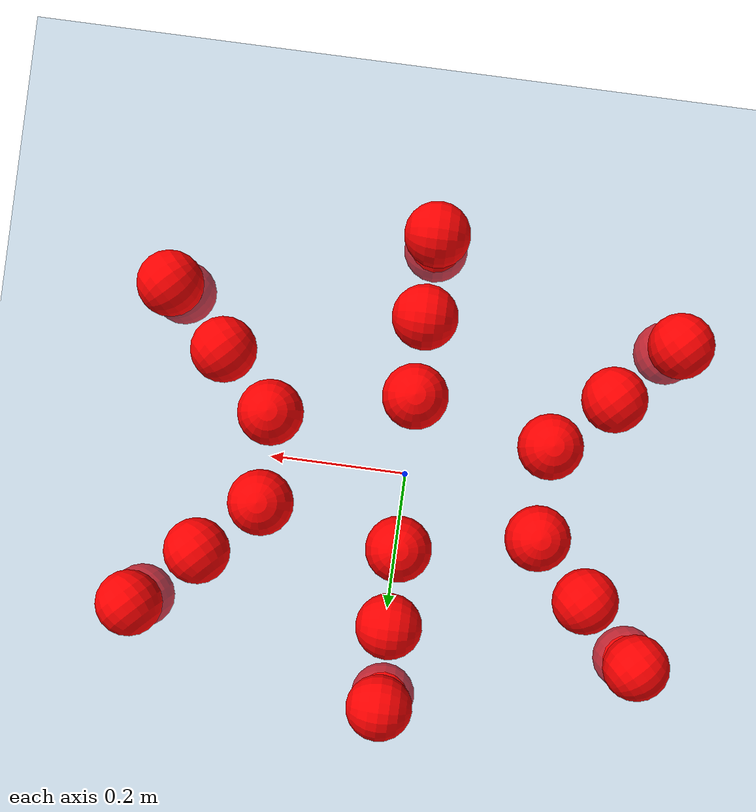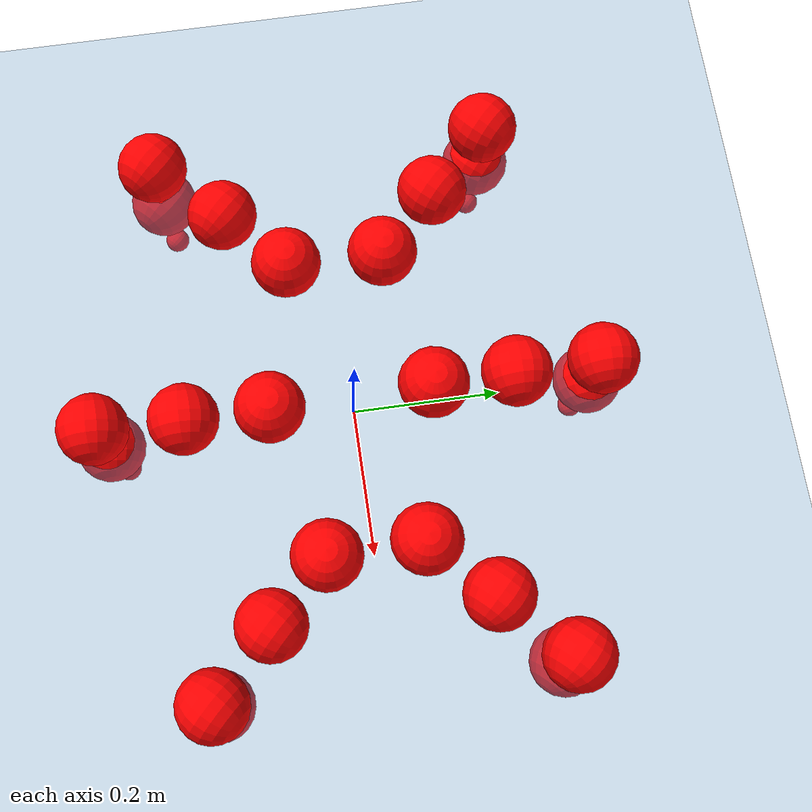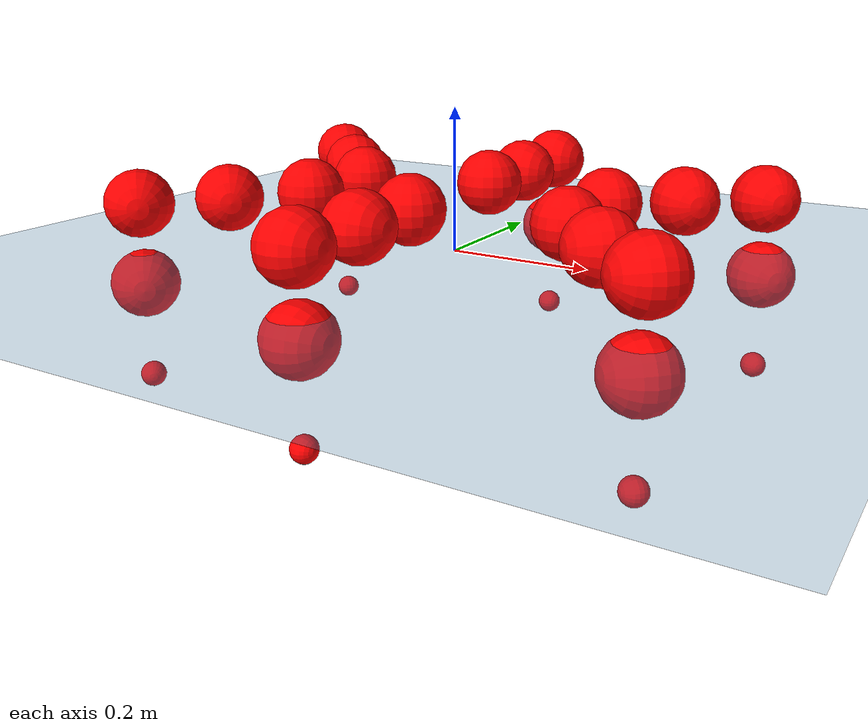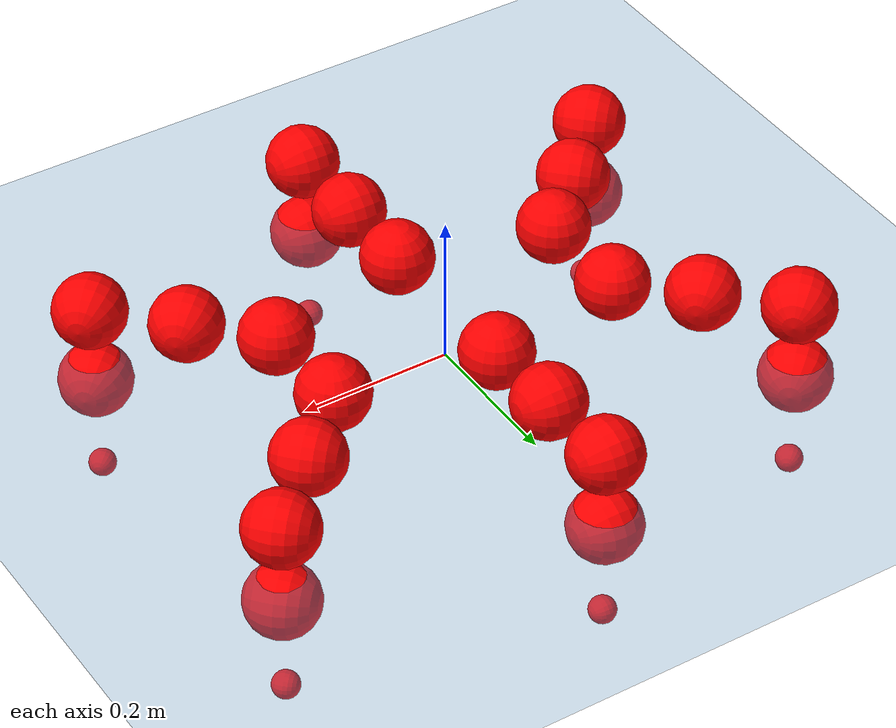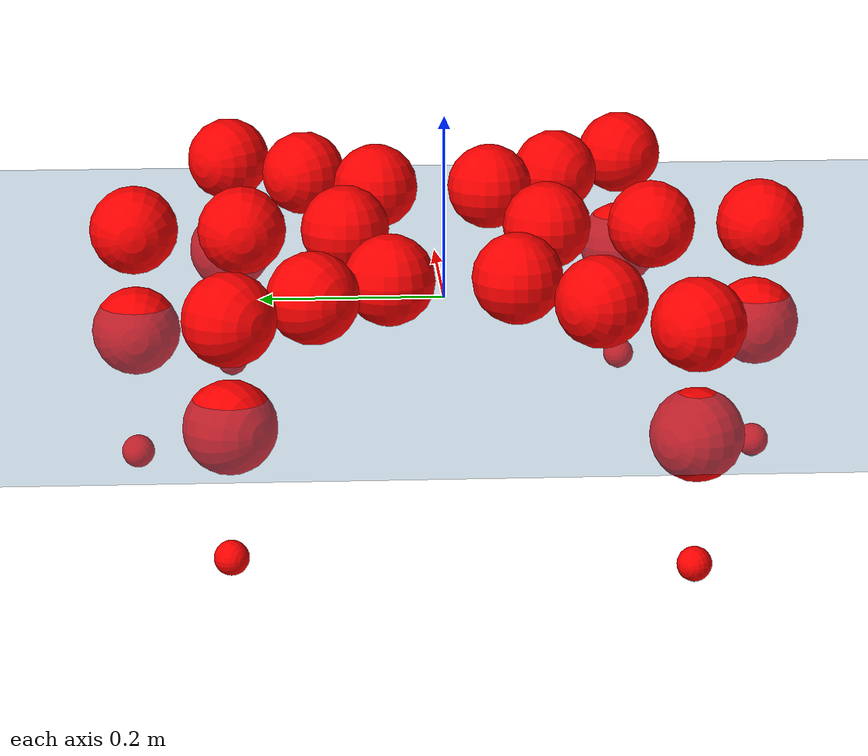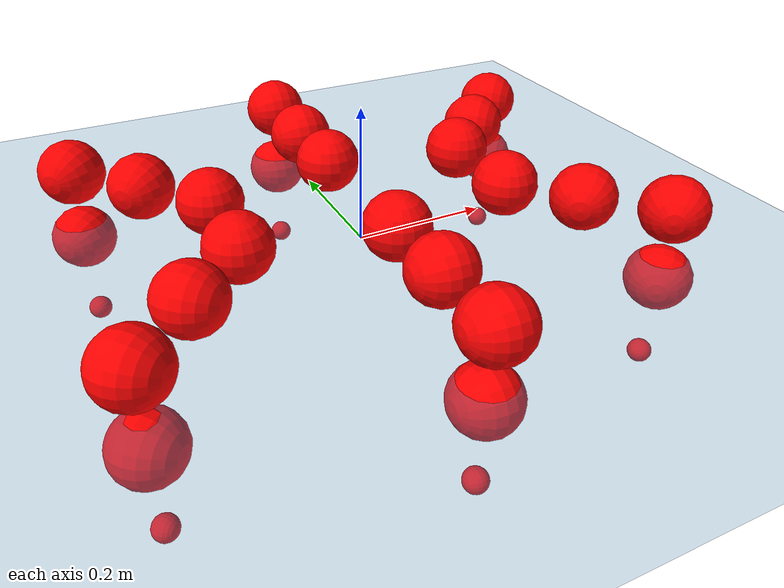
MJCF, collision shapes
<mujoco model="Golem">
  <compiler angle="radian" assetdir="assets" balanceinertia="true" inertiafromgeom="false"/>

  <option timestep="0.005" density="1.2" viscosity="2e-05"/>

  <size nkey="1"/>

  <visual>
    <quality shadowsize="8192"/>
    <map shadowclip="0.5"/>
  </visual>

  <default>
    <default class="/">
      <joint armature="0.01" damping="0.01" frictionloss="0.01"/>
      <geom contype="0" conaffinity="0" group="1" solref="-1000 -80"/>
      <site size="0.01 0.005 0.005" group="5"/>
      <general forcelimited="true" biastype="affine" gainprm="25" biasprm="0 -25 -0.5"/>
      <default class="visual">
        <geom type="mesh" group="2"/>
      </default>
      <default class="collision">
        <geom group="3"/>
      </default>
      <default class="foot">
        <geom size="0.01 0 0" condim="6" group="4" priority="1" solimp="0.015 1 0.01"/>
      </default>
      <default class="reward_collision_sphere">
        <geom group="5" rgba="1 0 0 1"/>
      </default>
    </default>
  </default>

  <asset>
    <texture type="skybox" colorspace="auto" name="//unnamed_texture_0" builtin="gradient" rgb1="0.95 0.95 0.95" rgb2="0.95 0.95 0.95" width="100" height="600"/>
    <texture type="2d" colorspace="auto" name="texplane" builtin="checker" rgb1="0.345 0.575 0.748" rgb2="0.345 0.575 0.748" markrgb="1 1 1" width="512" height="512"/>
    <material name="MatPlane" class="/" texture="texplane" texuniform="true" texrepeat="2 2" specular="0.9"/>
    <mesh name="body" class="/" file="body.stl" scale="0.001 0.001 0.001"/>
    <mesh name="coxa" class="/" file="coxa.stl" scale="0.001 0.001 0.001"/>
    <mesh name="femur" class="/" file="femur.stl" scale="0.001 0.001 0.001"/>
    <mesh name="tibia" class="/" file="tibia.stl" scale="0.001 0.001 0.001"/>
    <mesh name="tarsus" class="/" file="tarsus.stl" scale="0.001 0.001 0.001"/>
  </asset>

  <worldbody>
    <geom name="floor" class="/" size="100 100 0.125" type="plane" group="0" material="MatPlane"/>
    <light name="toplight_shadow" class="/" pos="0 0 5" dir="0.0990148 0.0990148 -0.990148" type="directional" ambient="0.04 0.04 0.04" diffuse="0.55 0.55 0.55" specular="0.12 0.12 0.12"/>
    <light name="toplight_fill" class="/" pos="0 0 5" dir="0.0990148 0.0990148 -0.990148" type="directional" castshadow="false" ambient="0.04 0.04 0.04" diffuse="0.3 0.3 0.3" specular="0.08 0.08 0.08"/>
    <body name="trunk" pos="-0.0015866 0.000353299 -0.00243902" quat="1 0.000499826 -0.000109853 0.000627895">
      <inertial pos="-0.00114896 -0.00292743 0.000259994" quat="0.999988 0.00327759 -0.00345173 0.00132884" mass="6.09962" diaginertia="0.0309532 0.01731 0.0231259"/>
      <joint name="//unnamed_joint_0" type="free"/>
      <geom name="//unnamed_geom_1" class="/" pos="0 0 0.0761694" quat="1 0 0 0" type="mesh" rgba="0.9 0.9 0.9 1" mesh="body"/>
      <site name="imu" class="/" pos="0.177994 -0.0135216 0.106217" size="0.0119167"/>
      <camera name="track" class="/" pos="0 -2.23162 0" quat="0.707107 0.707107 0 0" mode="trackcom"/>
      <camera name="ego_camera" class="/" pos="0.164976 0 0.119015" quat="-0.5 -0.5 0.5 0.5"/>
      <body name="coxa_RR" pos="-0.226622 -0.0919881 0.0769183" quat="0.383011 0.000286382 5.85957e-06 -0.923744">
        <inertial pos="-0.0023254 -0.000294349 -0.00251124" quat="0.999956 0.00287269 -0.00603348 0.00653165" mass="0.335856" diaginertia="0.03247 0.0172154 0.0236928"/>
        <joint name="coxa_joint_RR" class="/" pos="0 0 0" axis="-0.00351133 0.00615089 -0.999975" range="-3.19142 3.12034" armature="0.0103302" damping="0" frictionloss="0.0105908"/>
        <geom name="//unnamed_geom_2" class="/" type="mesh" rgba="0.2 0.2 0.2 1" mesh="coxa"/>
        <geom name="//unnamed_geom_3" class="reward_collision_sphere" size="0.0476667" pos="-0.0380713 0 0"/>
        <body name="femur_RR" pos="0.0756523 -0.00292241 -0.00323803" quat="0.500512 -0.499233 0.500155 0.500099">
          <inertial pos="-0.00287554 -0.000869858 -0.00205706" quat="0.99995 -0.00730018 0.00547021 0.00418355" mass="0.338581" diaginertia="0.0330879 0.0177188 0.0234276"/>
          <joint name="femur_joint_RR" class="/" pos="0 0 0" axis="-0.0128128 -0.00835474 -0.999883" range="-3.10285 3.13225" armature="0.0134926" damping="0.0187522" frictionloss="0.0106309"/>
          <geom name="//unnamed_geom_4" class="/" type="mesh" rgba="0.9 0.9 0.9 1" mesh="femur"/>
          <geom name="//unnamed_geom_5" class="reward_collision_sphere" size="0.0476667"/>
          <body name="tibia_RR" pos="0.00119384 -0.122355 0.00251431" quat="3.07497e-06 1 8.34022e-05 -8.74063e-05">
            <inertial pos="0.002221 0.00202065 -0.00131881" quat="0.999996 -0.00245558 0.000188086 0.00127429" mass="0.349162" diaginertia="0.0328012 0.0170683 0.0238852"/>
            <joint name="tibia_joint_RR" class="/" pos="0 0 0" axis="0.00158759 0.00409438 0.99999" stiffness="0.00598182" range="-3.14135 3.13168" armature="0.0122338" damping="0.00511822" frictionloss="0.0107764"/>
            <geom name="//unnamed_geom_6" class="/" type="mesh" rgba="0.2 0.2 0.2 1" mesh="tibia"/>
            <geom name="//unnamed_geom_7" class="reward_collision_sphere" size="0.0476667"/>
            <body name="tarsus_RR" pos="0.113995 0.000180612 -0.000508246" quat="1 7.73343e-06 0.000322183 -0.000200914">
              <inertial pos="0.0743633 0.0014234 -0.000279576" quat="0.498977 0.509394 0.497151 0.494349" mass="0.342568" diaginertia="0.0325847 0.0167289 0.0243376"/>
              <joint name="tarsus_joint_RR" class="/" pos="0 0 0" axis="0.00147818 0.0166166 0.999861" range="-3.10099 3.09193" armature="0.0118862" damping="0.00934401" frictionloss="0.0114053"/>
              <geom name="//unnamed_geom_8" class="/" type="mesh" rgba="0.9 0.9 0.9 1" mesh="tarsus"/>
              <geom name="foot_1" class="foot" size="0.0126394" pos="0.142133 0 0" quat="0 -0.707107 0 0.707107"/>
              <geom name="//unnamed_geom_10" class="reward_collision_sphere" size="0.0476667"/>
              <geom name="//unnamed_geom_11" class="reward_collision_sphere" size="0.017875" pos="0.136422 0 0"/>
              <site name="foot_1" class="foot" pos="0.142133 0 0" quat="0 -0.707107 0 0.707107" size="0.0119167"/>
            </body>
          </body>
        </body>
      </body>
      <body name="coxa_RM" pos="0.00065311 -0.149588 0.0815153" quat="0.706228 0.000356475 -0.000109889 -0.707984">
        <inertial pos="0.000130162 -0.00217573 -0.000802316" quat="0.999968 0.00165532 0.00395786 -0.00673001" mass="0.346274" diaginertia="0.0341284 0.0172856 0.0242765"/>
        <joint name="coxa_joint_RM" class="/" pos="0 0 0" axis="-0.0136258 -0.00725702 -0.999881" range="-3.179 3.17052" armature="0.0116215" damping="0.022164" frictionloss="0.0113122"/>
        <geom name="//unnamed_geom_12" class="/" type="mesh" rgba="0.2 0.2 0.2 1" mesh="coxa"/>
        <geom name="//unnamed_geom_13" class="reward_collision_sphere" size="0.0476667" pos="-0.0380713 0 0"/>
        <body name="femur_RM" pos="0.0755974 0.000745673 3.48376e-05" quat="0.499756 -0.500085 0.500233 0.499925">
          <inertial pos="0.00110886 -0.00235879 0.00216494" quat="0.999993 0.000552985 -0.00205218 -0.00303437" mass="0.338229" diaginertia="0.032427 0.0172555 0.0245948"/>
          <joint name="femur_joint_RM" class="/" pos="0 0 0" axis="-0.0121003 0.00304627 -0.999922" stiffness="0.0102944" range="-3.09168 3.12256" armature="0.0135544" damping="0.0253366" frictionloss="0.0121336"/>
          <geom name="//unnamed_geom_14" class="/" type="mesh" rgba="0.9 0.9 0.9 1" mesh="femur"/>
          <geom name="//unnamed_geom_15" class="reward_collision_sphere" size="0.0476667"/>
          <body name="tibia_RM" pos="-0.00109221 -0.118082 -0.00220483" quat="0.00103633 0.999999 -0.000479682 0.00049303">
            <inertial pos="0.00107638 0.00274051 -0.000375238" quat="0.999999 0.000425339 0.000909133 0.00057737" mass="0.350358" diaginertia="0.0346928 0.0183756 0.0250067"/>
            <joint name="tibia_joint_RM" class="/" pos="0 0 0" axis="-0.00309327 0.00346005 0.999989" range="-3.08511 3.13878" armature="0.0110437" damping="0" frictionloss="0.0134892"/>
            <geom name="//unnamed_geom_16" class="/" type="mesh" rgba="0.2 0.2 0.2 1" mesh="tibia"/>
            <geom name="//unnamed_geom_17" class="reward_collision_sphere" size="0.0476667"/>
            <body name="tarsus_RM" pos="0.110075 -0.00357158 0.000974158" quat="1 -0.000464803 8.33827e-05 0.000539183">
              <inertial pos="0.0738037 -0.000805258 0.00175432" quat="0.501631 0.49793 0.503306 0.497108" mass="0.351671" diaginertia="0.034852 0.0178251 0.0252429"/>
              <joint name="tarsus_joint_RM" class="/" pos="0 0 0" axis="-0.0120659 0.00264921 0.999924" range="-3.13701 3.16616" armature="0.0116217" damping="0.00978662" frictionloss="0.0104911"/>
              <geom name="//unnamed_geom_18" class="/" type="mesh" rgba="0.9 0.9 0.9 1" mesh="tarsus"/>
              <geom name="foot_2" class="foot" size="0.0130663" pos="0.142133 0 0" quat="0 -0.707107 0 0.707107"/>
              <geom name="//unnamed_geom_20" class="reward_collision_sphere" size="0.0476667"/>
              <geom name="//unnamed_geom_21" class="reward_collision_sphere" size="0.017875" pos="0.136422 0 0"/>
              <site name="foot_2" class="foot" pos="0.142133 0 0" quat="0 -0.707107 0 0.707107" size="0.0119167"/>
            </body>
          </body>
        </body>
      </body>
      <body name="coxa_RF" pos="0.229528 -0.0898771 0.0769958" quat="0.923589 -0.000106535 -0.00077351 -0.383384">
        <inertial pos="0.00288858 0.00281173 0.00203071" quat="0.999916 -0.00841847 0.0075971 -0.00628018" mass="0.336857" diaginertia="0.0326792 0.018201 0.0251596"/>
        <joint name="coxa_joint_RF" class="/" pos="0 0 0" axis="0.013046 -0.00903421 -0.999874" range="-3.14161 3.16667" armature="0.0115305" damping="0.00482903" frictionloss="0.0123889"/>
        <geom name="//unnamed_geom_22" class="/" type="mesh" rgba="0.2 0.2 0.2 1" mesh="coxa"/>
        <geom name="//unnamed_geom_23" class="reward_collision_sphere" size="0.0476667" pos="-0.0380713 0 0"/>
        <body name="femur_RF" pos="0.0739439 -0.00193625 -0.00211842" quat="0.499833 -0.499885 0.500088 0.500194">
          <inertial pos="0.0015494 -0.000114967 0.000717072" quat="0.99992 -0.0075732 0.00453713 -0.00901938" mass="0.343458" diaginertia="0.0327689 0.0182548 0.0247575"/>
          <joint name="femur_joint_RF" class="/" pos="0 0 0" axis="0.00248474 -0.00320443 -0.999992" range="-3.1571 3.18086" armature="0.011754" damping="0.00673974" frictionloss="0.0112279"/>
          <geom name="//unnamed_geom_24" class="/" type="mesh" rgba="0.9 0.9 0.9 1" mesh="femur"/>
          <geom name="//unnamed_geom_25" class="reward_collision_sphere" size="0.0476667"/>
          <body name="tibia_RF" pos="-0.00119131 -0.120805 0.00275218" quat="-0.000399414 1 -3.87541e-05 -0.000228817">
            <inertial pos="0.00158003 -0.00241741 9.49056e-05" quat="0.999968 -0.000608623 0.00607647 0.00525494" mass="0.32416" diaginertia="0.0330847 0.016894 0.0237049"/>
            <joint name="tibia_joint_RF" class="/" pos="0 0 0" axis="0.00210481 0.00330697 0.999992" range="-3.13671 3.1416" armature="0.0130764" damping="0.0114332" frictionloss="0.0118212"/>
            <geom name="//unnamed_geom_26" class="/" type="mesh" rgba="0.2 0.2 0.2 1" mesh="tibia"/>
            <geom name="//unnamed_geom_27" class="reward_collision_sphere" size="0.0476667"/>
            <body name="tarsus_RF" pos="0.109436 7.30812e-05 0.00284996" quat="0.999999 -0.00109024 -1.79548e-05 0.000309899">
              <inertial pos="0.0794231 0.000233922 0.00264982" quat="0.503891 0.497221 0.49053 0.508178" mass="0.34145" diaginertia="0.0324976 0.0170306 0.0243904"/>
              <joint name="tarsus_joint_RF" class="/" pos="0 0 0" axis="0.00113083 -0.00227753 0.999997" range="-3.15936 3.1417" armature="0.0118501" damping="0.00388317" frictionloss="0.010365"/>
              <geom name="//unnamed_geom_28" class="/" type="mesh" rgba="0.9 0.9 0.9 1" mesh="tarsus"/>
              <geom name="foot_3" class="foot" size="0.0125648" pos="0.142133 0 0" quat="0 -0.707107 0 0.707107"/>
              <geom name="//unnamed_geom_30" class="reward_collision_sphere" size="0.0476667"/>
              <geom name="//unnamed_geom_31" class="reward_collision_sphere" size="0.017875" pos="0.136422 0 0"/>
              <site name="foot_3" class="foot" pos="0.142133 0 0" quat="0 -0.707107 0 0.707107" size="0.0119167"/>
            </body>
          </body>
        </body>
      </body>
      <body name="coxa_LR" pos="-0.225136 0.0939104 0.076675" quat="0.382841 0.000861553 -0.000820002 0.923813">
        <inertial pos="-0.00138347 -0.00216468 0.000183509" quat="0.999998 -0.000840185 -0.000711744 0.00191797" mass="0.338899" diaginertia="0.0340564 0.0178798 0.0250556"/>
        <joint name="coxa_joint_LR" class="/" pos="0 0 0" axis="0.00776335 -0.0102356 -0.999917" range="-3.19006 3.19057" armature="0.010268" damping="0.0269725" frictionloss="0.0126013"/>
        <geom name="//unnamed_geom_32" class="/" type="mesh" rgba="0.2 0.2 0.2 1" mesh="coxa"/>
        <geom name="//unnamed_geom_33" class="reward_collision_sphere" size="0.0476667" pos="-0.0380713 0 0"/>
        <body name="femur_LR" pos="0.0737331 -0.00153694 0.00290888" quat="0.5012 -0.499322 0.499589 0.499887">
          <inertial pos="-0.000317907 -0.00278747 0.00121864" quat="0.999907 0.00845318 -0.010481 -0.00211303" mass="0.353203" diaginertia="0.0333431 0.0175284 0.0239199"/>
          <joint name="femur_joint_LR" class="/" pos="0 0 0" axis="-0.00391774 -0.00243493 0.999989" stiffness="0.0108568" range="-3.09998 3.15487" armature="0.012431" damping="0.00335997" frictionloss="0.0113504"/>
          <geom name="//unnamed_geom_34" class="/" type="mesh" rgba="0.9 0.9 0.9 1" mesh="femur"/>
          <geom name="//unnamed_geom_35" class="reward_collision_sphere" size="0.0476667"/>
          <body name="tibia_LR" pos="-0.00176123 -0.118509 -0.000320992" quat="0.000528957 0.999999 -0.000257132 -0.00103357">
            <inertial pos="0.00245661 -0.000594955 0.00226322" quat="1 -0.000359634 -0.0006191 -0.000230962" mass="0.345227" diaginertia="0.0342078 0.0175253 0.0235571"/>
            <joint name="tibia_joint_LR" class="/" pos="0 0 0" axis="-0.000142506 0.00130868 -0.999999" range="-3.11482 3.13499" armature="0.010265" damping="0.0110026" frictionloss="0.0114147"/>
            <geom name="//unnamed_geom_36" class="/" type="mesh" rgba="0.2 0.2 0.2 1" mesh="tibia"/>
            <geom name="//unnamed_geom_37" class="reward_collision_sphere" size="0.0476667"/>
            <body name="tarsus_LR" pos="0.109805 0.0013764 -0.00138967" quat="1 0.000290733 -0.000328488 0.000123519">
              <inertial pos="0.0760946 -0.000411318 -0.00292498" quat="0.499535 0.500222 0.499906 0.500337" mass="0.334946" diaginertia="0.0327193 0.0172853 0.0243719"/>
              <joint name="tarsus_joint_LR" class="/" pos="0 0 0" axis="7.69647e-05 5.44954e-06 -1" range="-3.12759 3.13017" armature="0.013503" damping="0.0310196" frictionloss="0.0117177"/>
              <geom name="//unnamed_geom_38" class="/" type="mesh" rgba="0.9 0.9 0.9 1" mesh="tarsus"/>
              <geom name="foot_4" class="foot" size="0.0121556" pos="0.142133 0 0" quat="0.707107 0 -0.707107 0"/>
              <geom name="//unnamed_geom_40" class="reward_collision_sphere" size="0.0476667"/>
              <geom name="//unnamed_geom_41" class="reward_collision_sphere" size="0.017875" pos="0.136422 0 0"/>
              <site name="foot_4" class="foot" pos="0.142133 0 0" quat="0.707107 0 -0.707107 0" size="0.0119167"/>
            </body>
          </body>
        </body>
      </body>
      <body name="coxa_LM" pos="-0.00313918 0.145041 0.0812263" quat="0.707432 0.000342334 -0.000431051 0.706782">
        <inertial pos="-7.32237e-05 4.58417e-05 0.00315499" quat="0.999907 0.0012422 -0.00702784 -0.0116299" mass="0.337872" diaginertia="0.0319359 0.017274 0.0231767"/>
        <joint name="coxa_joint_LM" class="/" pos="0 0 0" axis="-0.00220124 -0.00197999 -0.999996" stiffness="0.00498692" range="-3.12179 3.1407" armature="0.0114986" damping="0" frictionloss="0.0107018"/>
        <geom name="//unnamed_geom_42" class="/" type="mesh" rgba="0.2 0.2 0.2 1" mesh="coxa"/>
        <geom name="//unnamed_geom_43" class="reward_collision_sphere" size="0.0476667" pos="-0.0380713 0 0"/>
        <body name="femur_LM" pos="0.0728486 0.000496236 0.000280881" quat="0.500024 -0.499945 0.500048 0.499983">
          <inertial pos="0.00174412 7.2925e-05 -0.00237837" quat="0.999911 -0.00184637 -0.00984606 -0.00886239" mass="0.333151" diaginertia="0.0346062 0.0175777 0.0243412"/>
          <joint name="femur_joint_LM" class="/" pos="0 0 0" axis="-0.00655468 0.00138723 0.999978" stiffness="0.00200541" range="-3.15988 3.08618" armature="0.0103744" damping="0.0280866" frictionloss="0.0118251"/>
          <geom name="//unnamed_geom_44" class="/" type="mesh" rgba="0.9 0.9 0.9 1" mesh="femur"/>
          <geom name="//unnamed_geom_45" class="reward_collision_sphere" size="0.0476667"/>
          <body name="tibia_LM" pos="-0.00190853 -0.115816 0.00103118" quat="-0.000333292 0.999999 -0.000499449 0.00096158">
            <inertial pos="0.00100099 -6.28863e-05 0.000172458" quat="0.999911 -0.00210319 0.00757383 -0.0108218" mass="0.346057" diaginertia="0.0328427 0.0171379 0.024497"/>
            <joint name="tibia_joint_LM" class="/" pos="0 0 0" axis="-0.000446129 -0.000202984 -1" stiffness="0.00367656" range="-3.08772 3.08656" armature="0.011092" damping="0.00715208" frictionloss="0.0135137"/>
            <geom name="//unnamed_geom_46" class="/" type="mesh" rgba="0.2 0.2 0.2 1" mesh="tibia"/>
            <geom name="//unnamed_geom_47" class="reward_collision_sphere" size="0.0476667"/>
            <body name="tarsus_LM" pos="0.110987 -0.000723322 -0.00320891" quat="0.999999 0.000502726 0.00117294 0.000811391">
              <inertial pos="0.0756794 3.20349e-05 -0.00187205" quat="0.499663 0.499446 0.500668 0.500222" mass="0.350501" diaginertia="0.0330165 0.0172809 0.0239003"/>
              <joint name="tarsus_joint_LM" class="/" pos="0 0 0" axis="-0.00855638 0.00748272 -0.999935" range="-3.11951 3.13728" armature="0.0135446" damping="0.00518703" frictionloss="0.0121793"/>
              <geom name="//unnamed_geom_48" class="/" type="mesh" rgba="0.9 0.9 0.9 1" mesh="tarsus"/>
              <geom name="foot_5" class="foot" size="0.0107187" pos="0.142133 0 0" quat="0.707107 0 -0.707107 0"/>
              <geom name="//unnamed_geom_50" class="reward_collision_sphere" size="0.0476667"/>
              <geom name="//unnamed_geom_51" class="reward_collision_sphere" size="0.017875" pos="0.136422 0 0"/>
              <site name="foot_5" class="foot" pos="0.142133 0 0" quat="0.707107 0 -0.707107 0" size="0.0119167"/>
            </body>
          </body>
        </body>
      </body>
      <body name="coxa_LF" pos="0.227049 0.0932335 0.0791236" quat="0.923849 0.000180236 0.00122185 0.382756">
        <inertial pos="0.000190902 0.00198508 -0.000430103" quat="0.999999 -0.000368413 0.000715489 0.00139735" mass="0.33915" diaginertia="0.0322397 0.0163469 0.0226441"/>
        <joint name="coxa_joint_LF" class="/" pos="0 0 0" axis="-0.00178663 -0.00733832 -0.999971" range="-3.11526 3.147" armature="0.0133194" damping="0.00851742" frictionloss="0.0116924"/>
        <geom name="//unnamed_geom_52" class="/" type="mesh" rgba="0.2 0.2 0.2 1" mesh="coxa"/>
        <geom name="//unnamed_geom_53" class="reward_collision_sphere" size="0.0476667" pos="-0.0380713 0 0"/>
        <body name="femur_LF" pos="0.0760107 -0.00111918 -0.00271211" quat="0.499769 -0.499978 0.500683 0.499568">
          <inertial pos="-0.00128731 0.00178731 0.000215652" quat="0.999933 -0.0036508 -0.00912038 -0.00620005" mass="0.349116" diaginertia="0.0349463 0.0177632 0.0242167"/>
          <joint name="femur_joint_LF" class="/" pos="0 0 0" axis="-0.0128095 -0.00630153 0.999898" stiffness="0.0191852" range="-3.18092 3.13551" armature="0.0129503" damping="0.0111013" frictionloss="0.011461"/>
          <geom name="//unnamed_geom_54" class="/" type="mesh" rgba="0.9 0.9 0.9 1" mesh="femur"/>
          <geom name="//unnamed_geom_55" class="reward_collision_sphere" size="0.0476667"/>
          <body name="tibia_LF" pos="0.00255344 -0.122617 -0.000581942" quat="0.00019326 1 9.39654e-06 0.000199876">
            <inertial pos="-0.0010371 -0.00100373 -0.00231371" quat="0.999909 0.00968487 0.0090744 0.00253792" mass="0.334447" diaginertia="0.0325527 0.0175208 0.0229998"/>
            <joint name="tibia_joint_LF" class="/" pos="0 0 0" axis="-0.00430834 0.0123527 -0.999914" stiffness="0.00149771" range="-3.1084 3.15847" armature="0.0107107" damping="0.000994125" frictionloss="0.0108186"/>
            <geom name="//unnamed_geom_56" class="/" type="mesh" rgba="0.2 0.2 0.2 1" mesh="tibia"/>
            <geom name="//unnamed_geom_57" class="reward_collision_sphere" size="0.0476667"/>
            <body name="tarsus_LF" pos="0.109855 0.00145574 0.00179457" quat="1 4.46894e-05 -0.000227845 -0.000325423">
              <inertial pos="0.0745214 -0.0018007 -0.00097868" quat="0.50009 0.501637 0.499008 0.49926" mass="0.336218" diaginertia="0.0324456 0.0170749 0.0229858"/>
              <joint name="tarsus_joint_LF" class="/" pos="0 0 0" axis="0.0034496 0.00222303 -0.999992" range="-3.14429 3.16431" armature="0.0133918" damping="0.0261546" frictionloss="0.0132625"/>
              <geom name="//unnamed_geom_58" class="/" type="mesh" rgba="0.9 0.9 0.9 1" mesh="tarsus"/>
              <geom name="foot_6" class="foot" size="0.0126249" pos="0.142133 0 0" quat="0.707107 0 -0.707107 0"/>
              <geom name="//unnamed_geom_60" class="reward_collision_sphere" size="0.0476667"/>
              <geom name="//unnamed_geom_61" class="reward_collision_sphere" size="0.017875" pos="0.136422 0 0"/>
              <site name="foot_6" class="foot" pos="0.142133 0 0" quat="0.707107 0 -0.707107 0" size="0.0119167"/>
            </body>
          </body>
        </body>
      </body>
    </body>
  </worldbody>

  <contact>
    <pair class="/" geom1="floor" geom2="foot_1" name="//unnamed_contact_0"/>
    <pair class="/" geom1="floor" geom2="foot_2" name="//unnamed_contact_1"/>
    <pair class="/" geom1="floor" geom2="foot_3" name="//unnamed_contact_2"/>
    <pair class="/" geom1="floor" geom2="foot_4" name="//unnamed_contact_3"/>
    <pair class="/" geom1="floor" geom2="foot_5" name="//unnamed_contact_4"/>
    <pair class="/" geom1="floor" geom2="foot_6" name="//unnamed_contact_5"/>
  </contact>

  <actuator>
    <general name="coxa_joint_RR" class="/" joint="coxa_joint_RR" forcerange="-7.97905 7.97905" gainprm="27.8254" biasprm="0 -27.8254 -0.610971"/>
    <general name="femur_joint_RR" class="/" joint="femur_joint_RR" forcerange="-8.39778 8.39778" gainprm="27.8254" biasprm="0 -27.8254 -0.610971"/>
    <general name="tibia_joint_RR" class="/" joint="tibia_joint_RR" forcerange="-8.68687 8.68687" gainprm="27.8254" biasprm="0 -27.8254 -0.610971"/>
    <general name="tarsus_joint_RR" class="/" joint="tarsus_joint_RR" forcerange="-8.78805 8.78805" gainprm="27.8254" biasprm="0 -27.8254 -0.610971"/>
    <general name="coxa_joint_RM" class="/" joint="coxa_joint_RM" forcerange="-8.64726 8.64726" gainprm="27.8254" biasprm="0 -27.8254 -0.610971"/>
    <general name="femur_joint_RM" class="/" joint="femur_joint_RM" forcerange="-8.39404 8.39404" gainprm="27.8254" biasprm="0 -27.8254 -0.610971"/>
    <general name="tibia_joint_RM" class="/" joint="tibia_joint_RM" forcerange="-8.54489 8.54489" gainprm="27.8254" biasprm="0 -27.8254 -0.610971"/>
    <general name="tarsus_joint_RM" class="/" joint="tarsus_joint_RM" forcerange="-8.36605 8.36605" gainprm="27.8254" biasprm="0 -27.8254 -0.610971"/>
    <general name="coxa_joint_RF" class="/" joint="coxa_joint_RF" forcerange="-8.69369 8.69369" gainprm="27.8254" biasprm="0 -27.8254 -0.610971"/>
    <general name="femur_joint_RF" class="/" joint="femur_joint_RF" forcerange="-8.75194 8.75194" gainprm="27.8254" biasprm="0 -27.8254 -0.610971"/>
    <general name="tibia_joint_RF" class="/" joint="tibia_joint_RF" forcerange="-8.79303 8.79303" gainprm="27.8254" biasprm="0 -27.8254 -0.610971"/>
    <general name="tarsus_joint_RF" class="/" joint="tarsus_joint_RF" forcerange="-7.92934 7.92934" gainprm="27.8254" biasprm="0 -27.8254 -0.610971"/>
    <general name="coxa_joint_LR" class="/" joint="coxa_joint_LR" forcerange="-7.82084 7.82084" gainprm="27.8254" biasprm="0 -27.8254 -0.610971"/>
    <general name="femur_joint_LR" class="/" joint="femur_joint_LR" forcerange="-8.6622 8.6622" gainprm="27.8254" biasprm="0 -27.8254 -0.610971"/>
    <general name="tibia_joint_LR" class="/" joint="tibia_joint_LR" forcerange="-9.18475 9.18475" gainprm="27.8254" biasprm="0 -27.8254 -0.610971"/>
    <general name="tarsus_joint_LR" class="/" joint="tarsus_joint_LR" forcerange="-8.67881 8.67881" gainprm="27.8254" biasprm="0 -27.8254 -0.610971"/>
    <general name="coxa_joint_LM" class="/" joint="coxa_joint_LM" forcerange="-9.0062 9.0062" gainprm="27.8254" biasprm="0 -27.8254 -0.610971"/>
    <general name="femur_joint_LM" class="/" joint="femur_joint_LM" forcerange="-7.86708 7.86708" gainprm="27.8254" biasprm="0 -27.8254 -0.610971"/>
    <general name="tibia_joint_LM" class="/" joint="tibia_joint_LM" forcerange="-8.64525 8.64525" gainprm="27.8254" biasprm="0 -27.8254 -0.610971"/>
    <general name="tarsus_joint_LM" class="/" joint="tarsus_joint_LM" forcerange="-9.40432 9.40432" gainprm="27.8254" biasprm="0 -27.8254 -0.610971"/>
    <general name="coxa_joint_LF" class="/" joint="coxa_joint_LF" forcerange="-7.83278 7.83278" gainprm="27.8254" biasprm="0 -27.8254 -0.610971"/>
    <general name="femur_joint_LF" class="/" joint="femur_joint_LF" forcerange="-9.10804 9.10804" gainprm="27.8254" biasprm="0 -27.8254 -0.610971"/>
    <general name="tibia_joint_LF" class="/" joint="tibia_joint_LF" forcerange="-8.76741 8.76741" gainprm="27.8254" biasprm="0 -27.8254 -0.610971"/>
    <general name="tarsus_joint_LF" class="/" joint="tarsus_joint_LF" forcerange="-9.53652 9.53652" gainprm="27.8254" biasprm="0 -27.8254 -0.610971"/>
  </actuator>

  <sensor>
    <gyro site="imu" name="imu_angular_velocity"/>
    <velocimeter site="imu" name="imu_linear_velocity"/>
    <framelinvel objtype="site" objname="foot_1" name="foot_1_global_linear_velocity"/>
    <framelinvel objtype="site" objname="foot_2" name="foot_2_global_linear_velocity"/>
    <framelinvel objtype="site" objname="foot_3" name="foot_3_global_linear_velocity"/>
    <framelinvel objtype="site" objname="foot_4" name="foot_4_global_linear_velocity"/>
    <framelinvel objtype="site" objname="foot_5" name="foot_5_global_linear_velocity"/>
    <framelinvel objtype="site" objname="foot_6" name="foot_6_global_linear_velocity"/>
  </sensor>

  <keyframe>
    <key name="home" qpos="0 0 0.1457 1 0 0 0 0 0 0 0 0 0 0 0 0 0 0 0 0 0 0 0 0 0 0 0 0 0 0 0"/>
  </keyframe>
</mujoco>
